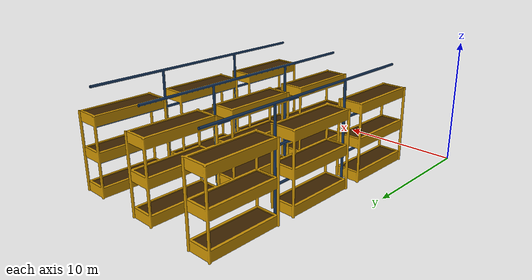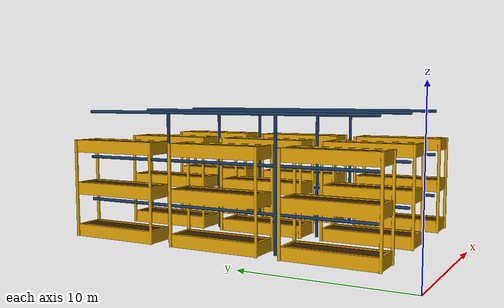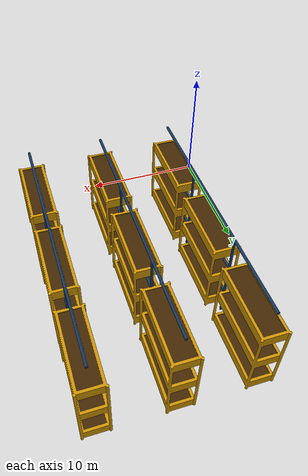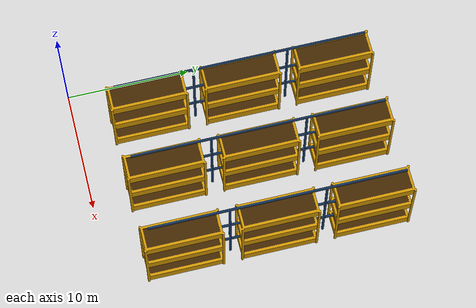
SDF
<?xml version='1.0'?>
<sdf version="1.6">
  <model name="icuas24">
    <static>true</static>
    <link name="link">
      <collision name="collision">
        <geometry>
          <box>
            <size>1 1 1</size>
          </box>
        </geometry>
      </collision>
      <visual name="visual">
        <geometry>
          <mesh>
            <scale>1 1 1</scale>
            <uri>model://icuas24/icuas24_wrld_notxt.dae</uri>
          </mesh>
        </geometry>
      </visual>
    </link>
  </model>
</sdf>
